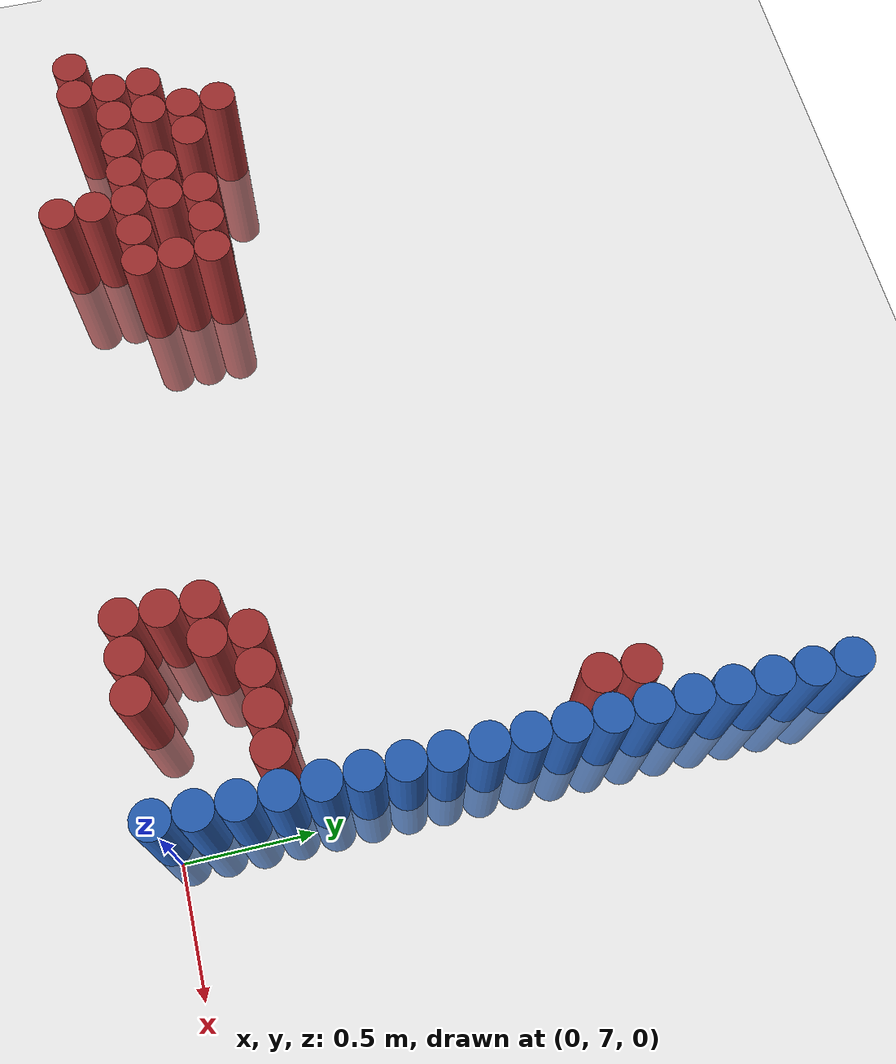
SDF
<sdf version="1.6">
 <world name="default">
  <model name="ground_plane">
   <static>1</static>
   <link name="link">
    <collision name="collision">
     <geometry><plane><normal>0 0 1</normal><size>100 100</size></plane></geometry>
     <surface><friction><ode><mu>100</mu><mu2>50</mu2></ode></friction></surface>
    </collision>
    <visual name="visual">
     <cast_shadows>0</cast_shadows>
     <geometry><plane><normal>0 0 1</normal><size>100 100</size></plane></geometry>
     <material>
      <script><uri>file://media/materials/scripts/gazebo.material</uri><name>Gazebo/Grey</name></script>
     </material>
    </visual>
   </link>
  </model>
  <model name="unit_cylinder_166">
   <static>1</static>
   <pose>-3.375000 7.125000 0.000000 0.000000 0.000000 0.000000</pose>
   <link name="link">
    <inertial>
     <mass>1</mass>
     <inertia><ixx>0.145833</ixx><ixy>0</ixy><ixz>0</ixz><iyy>0.145833</iyy><iyz>0</iyz><izz>0.125</izz></inertia>
    </inertial>
    <collision name="collision">
     <geometry><cylinder><radius>0.075000</radius><length>1</length></cylinder></geometry>
    </collision>
    <visual name="visual">
     <geometry><cylinder><radius>0.075000</radius><length>1</length></cylinder></geometry>
     <material>
      <ambient>0.648000 0.192000 0.192000 1</ambient>
      <diffuse>0.648000 0.192000 0.192000 1</diffuse>
     </material>
     <material>
      <script><name>Gazebo/Grey</name><uri>file://media/materials/scripts/gazebo.material</uri></script>
     </material>
    </visual>
   </link>
  </model>
  <model name="unit_cylinder_173">
   <static>1</static>
   <pose>-3.225000 7.125000 0.000000 0.000000 0.000000 0.000000</pose>
   <link name="link">
    <inertial>
     <mass>1</mass>
     <inertia><ixx>0.145833</ixx><ixy>0</ixy><ixz>0</ixz><iyy>0.145833</iyy><iyz>0</iyz><izz>0.125</izz></inertia>
    </inertial>
    <collision name="collision">
     <geometry><cylinder><radius>0.075000</radius><length>1</length></cylinder></geometry>
    </collision>
    <visual name="visual">
     <geometry><cylinder><radius>0.075000</radius><length>1</length></cylinder></geometry>
     <material>
      <ambient>0.648000 0.192000 0.192000 1</ambient>
      <diffuse>0.648000 0.192000 0.192000 1</diffuse>
     </material>
     <material>
      <script><name>Gazebo/Grey</name><uri>file://media/materials/scripts/gazebo.material</uri></script>
     </material>
    </visual>
   </link>
  </model>
  <model name="unit_cylinder_174">
   <static>1</static>
   <pose>-3.225000 7.275000 0.000000 0.000000 0.000000 0.000000</pose>
   <link name="link">
    <inertial>
     <mass>1</mass>
     <inertia><ixx>0.145833</ixx><ixy>0</ixy><ixz>0</ixz><iyy>0.145833</iyy><iyz>0</iyz><izz>0.125</izz></inertia>
    </inertial>
    <collision name="collision">
     <geometry><cylinder><radius>0.075000</radius><length>1</length></cylinder></geometry>
    </collision>
    <visual name="visual">
     <geometry><cylinder><radius>0.075000</radius><length>1</length></cylinder></geometry>
     <material>
      <ambient>0.648000 0.192000 0.192000 1</ambient>
      <diffuse>0.648000 0.192000 0.192000 1</diffuse>
     </material>
     <material>
      <script><name>Gazebo/Grey</name><uri>file://media/materials/scripts/gazebo.material</uri></script>
     </material>
    </visual>
   </link>
  </model>
  <model name="unit_cylinder_175">
   <static>1</static>
   <pose>-3.225000 7.425000 0.000000 0.000000 0.000000 0.000000</pose>
   <link name="link">
    <inertial>
     <mass>1</mass>
     <inertia><ixx>0.145833</ixx><ixy>0</ixy><ixz>0</ixz><iyy>0.145833</iyy><iyz>0</iyz><izz>0.125</izz></inertia>
    </inertial>
    <collision name="collision">
     <geometry><cylinder><radius>0.075000</radius><length>1</length></cylinder></geometry>
    </collision>
    <visual name="visual">
     <geometry><cylinder><radius>0.075000</radius><length>1</length></cylinder></geometry>
     <material>
      <ambient>0.648000 0.192000 0.192000 1</ambient>
      <diffuse>0.648000 0.192000 0.192000 1</diffuse>
     </material>
     <material>
      <script><name>Gazebo/Grey</name><uri>file://media/materials/scripts/gazebo.material</uri></script>
     </material>
    </visual>
   </link>
  </model>
  <model name="unit_cylinder_182">
   <static>1</static>
   <pose>-3.075000 7.275000 0.000000 0.000000 0.000000 0.000000</pose>
   <link name="link">
    <inertial>
     <mass>1</mass>
     <inertia><ixx>0.145833</ixx><ixy>0</ixy><ixz>0</ixz><iyy>0.145833</iyy><iyz>0</iyz><izz>0.125</izz></inertia>
    </inertial>
    <collision name="collision">
     <geometry><cylinder><radius>0.075000</radius><length>1</length></cylinder></geometry>
    </collision>
    <visual name="visual">
     <geometry><cylinder><radius>0.075000</radius><length>1</length></cylinder></geometry>
     <material>
      <ambient>0.648000 0.192000 0.192000 1</ambient>
      <diffuse>0.648000 0.192000 0.192000 1</diffuse>
     </material>
     <material>
      <script><name>Gazebo/Grey</name><uri>file://media/materials/scripts/gazebo.material</uri></script>
     </material>
    </visual>
   </link>
  </model>
  <model name="unit_cylinder_183">
   <static>1</static>
   <pose>-3.075000 7.425000 0.000000 0.000000 0.000000 0.000000</pose>
   <link name="link">
    <inertial>
     <mass>1</mass>
     <inertia><ixx>0.145833</ixx><ixy>0</ixy><ixz>0</ixz><iyy>0.145833</iyy><iyz>0</iyz><izz>0.125</izz></inertia>
    </inertial>
    <collision name="collision">
     <geometry><cylinder><radius>0.075000</radius><length>1</length></cylinder></geometry>
    </collision>
    <visual name="visual">
     <geometry><cylinder><radius>0.075000</radius><length>1</length></cylinder></geometry>
     <material>
      <ambient>0.648000 0.192000 0.192000 1</ambient>
      <diffuse>0.648000 0.192000 0.192000 1</diffuse>
     </material>
     <material>
      <script><name>Gazebo/Grey</name><uri>file://media/materials/scripts/gazebo.material</uri></script>
     </material>
    </visual>
   </link>
  </model>
  <model name="unit_cylinder_184">
   <static>1</static>
   <pose>-3.075000 7.575000 0.000000 0.000000 0.000000 0.000000</pose>
   <link name="link">
    <inertial>
     <mass>1</mass>
     <inertia><ixx>0.145833</ixx><ixy>0</ixy><ixz>0</ixz><iyy>0.145833</iyy><iyz>0</iyz><izz>0.125</izz></inertia>
    </inertial>
    <collision name="collision">
     <geometry><cylinder><radius>0.075000</radius><length>1</length></cylinder></geometry>
    </collision>
    <visual name="visual">
     <geometry><cylinder><radius>0.075000</radius><length>1</length></cylinder></geometry>
     <material>
      <ambient>0.648000 0.192000 0.192000 1</ambient>
      <diffuse>0.648000 0.192000 0.192000 1</diffuse>
     </material>
     <material>
      <script><name>Gazebo/Grey</name><uri>file://media/materials/scripts/gazebo.material</uri></script>
     </material>
    </visual>
   </link>
  </model>
  <model name="unit_cylinder_185">
   <static>1</static>
   <pose>-3.075000 7.725000 0.000000 0.000000 0.000000 0.000000</pose>
   <link name="link">
    <inertial>
     <mass>1</mass>
     <inertia><ixx>0.145833</ixx><ixy>0</ixy><ixz>0</ixz><iyy>0.145833</iyy><iyz>0</iyz><izz>0.125</izz></inertia>
    </inertial>
    <collision name="collision">
     <geometry><cylinder><radius>0.075000</radius><length>1</length></cylinder></geometry>
    </collision>
    <visual name="visual">
     <geometry><cylinder><radius>0.075000</radius><length>1</length></cylinder></geometry>
     <material>
      <ambient>0.648000 0.192000 0.192000 1</ambient>
      <diffuse>0.648000 0.192000 0.192000 1</diffuse>
     </material>
     <material>
      <script><name>Gazebo/Grey</name><uri>file://media/materials/scripts/gazebo.material</uri></script>
     </material>
    </visual>
   </link>
  </model>
  <model name="unit_cylinder_195">
   <static>1</static>
   <pose>-2.925000 7.275000 0.000000 0.000000 0.000000 0.000000</pose>
   <link name="link">
    <inertial>
     <mass>1</mass>
     <inertia><ixx>0.145833</ixx><ixy>0</ixy><ixz>0</ixz><iyy>0.145833</iyy><iyz>0</iyz><izz>0.125</izz></inertia>
    </inertial>
    <collision name="collision">
     <geometry><cylinder><radius>0.075000</radius><length>1</length></cylinder></geometry>
    </collision>
    <visual name="visual">
     <geometry><cylinder><radius>0.075000</radius><length>1</length></cylinder></geometry>
     <material>
      <ambient>0.648000 0.192000 0.192000 1</ambient>
      <diffuse>0.648000 0.192000 0.192000 1</diffuse>
     </material>
     <material>
      <script><name>Gazebo/Grey</name><uri>file://media/materials/scripts/gazebo.material</uri></script>
     </material>
    </visual>
   </link>
  </model>
  <model name="unit_cylinder_196">
   <static>1</static>
   <pose>-2.925000 7.575000 0.000000 0.000000 0.000000 0.000000</pose>
   <link name="link">
    <inertial>
     <mass>1</mass>
     <inertia><ixx>0.145833</ixx><ixy>0</ixy><ixz>0</ixz><iyy>0.145833</iyy><iyz>0</iyz><izz>0.125</izz></inertia>
    </inertial>
    <collision name="collision">
     <geometry><cylinder><radius>0.075000</radius><length>1</length></cylinder></geometry>
    </collision>
    <visual name="visual">
     <geometry><cylinder><radius>0.075000</radius><length>1</length></cylinder></geometry>
     <material>
      <ambient>0.648000 0.192000 0.192000 1</ambient>
      <diffuse>0.648000 0.192000 0.192000 1</diffuse>
     </material>
     <material>
      <script><name>Gazebo/Grey</name><uri>file://media/materials/scripts/gazebo.material</uri></script>
     </material>
    </visual>
   </link>
  </model>
  <model name="unit_cylinder_203">
   <static>1</static>
   <pose>-2.775000 7.275000 0.000000 0.000000 0.000000 0.000000</pose>
   <link name="link">
    <inertial>
     <mass>1</mass>
     <inertia><ixx>0.145833</ixx><ixy>0</ixy><ixz>0</ixz><iyy>0.145833</iyy><iyz>0</iyz><izz>0.125</izz></inertia>
    </inertial>
    <collision name="collision">
     <geometry><cylinder><radius>0.075000</radius><length>1</length></cylinder></geometry>
    </collision>
    <visual name="visual">
     <geometry><cylinder><radius>0.075000</radius><length>1</length></cylinder></geometry>
     <material>
      <ambient>0.648000 0.192000 0.192000 1</ambient>
      <diffuse>0.648000 0.192000 0.192000 1</diffuse>
     </material>
     <material>
      <script><name>Gazebo/Grey</name><uri>file://media/materials/scripts/gazebo.material</uri></script>
     </material>
    </visual>
   </link>
  </model>
  <model name="unit_cylinder_204">
   <static>1</static>
   <pose>-2.775000 7.425000 0.000000 0.000000 0.000000 0.000000</pose>
   <link name="link">
    <inertial>
     <mass>1</mass>
     <inertia><ixx>0.145833</ixx><ixy>0</ixy><ixz>0</ixz><iyy>0.145833</iyy><iyz>0</iyz><izz>0.125</izz></inertia>
    </inertial>
    <collision name="collision">
     <geometry><cylinder><radius>0.075000</radius><length>1</length></cylinder></geometry>
    </collision>
    <visual name="visual">
     <geometry><cylinder><radius>0.075000</radius><length>1</length></cylinder></geometry>
     <material>
      <ambient>0.648000 0.192000 0.192000 1</ambient>
      <diffuse>0.648000 0.192000 0.192000 1</diffuse>
     </material>
     <material>
      <script><name>Gazebo/Grey</name><uri>file://media/materials/scripts/gazebo.material</uri></script>
     </material>
    </visual>
   </link>
  </model>
  <model name="unit_cylinder_208">
   <static>1</static>
   <pose>-2.625000 6.975000 0.000000 0.000000 0.000000 0.000000</pose>
   <link name="link">
    <inertial>
     <mass>1</mass>
     <inertia><ixx>0.145833</ixx><ixy>0</ixy><ixz>0</ixz><iyy>0.145833</iyy><iyz>0</iyz><izz>0.125</izz></inertia>
    </inertial>
    <collision name="collision">
     <geometry><cylinder><radius>0.075000</radius><length>1</length></cylinder></geometry>
    </collision>
    <visual name="visual">
     <geometry><cylinder><radius>0.075000</radius><length>1</length></cylinder></geometry>
     <material>
      <ambient>0.648000 0.192000 0.192000 1</ambient>
      <diffuse>0.648000 0.192000 0.192000 1</diffuse>
     </material>
     <material>
      <script><name>Gazebo/Grey</name><uri>file://media/materials/scripts/gazebo.material</uri></script>
     </material>
    </visual>
   </link>
  </model>
  <model name="unit_cylinder_209">
   <static>1</static>
   <pose>-2.625000 7.125000 0.000000 0.000000 0.000000 0.000000</pose>
   <link name="link">
    <inertial>
     <mass>1</mass>
     <inertia><ixx>0.145833</ixx><ixy>0</ixy><ixz>0</ixz><iyy>0.145833</iyy><iyz>0</iyz><izz>0.125</izz></inertia>
    </inertial>
    <collision name="collision">
     <geometry><cylinder><radius>0.075000</radius><length>1</length></cylinder></geometry>
    </collision>
    <visual name="visual">
     <geometry><cylinder><radius>0.075000</radius><length>1</length></cylinder></geometry>
     <material>
      <ambient>0.648000 0.192000 0.192000 1</ambient>
      <diffuse>0.648000 0.192000 0.192000 1</diffuse>
     </material>
     <material>
      <script><name>Gazebo/Grey</name><uri>file://media/materials/scripts/gazebo.material</uri></script>
     </material>
    </visual>
   </link>
  </model>
  <model name="unit_cylinder_210">
   <static>1</static>
   <pose>-2.625000 7.275000 0.000000 0.000000 0.000000 0.000000</pose>
   <link name="link">
    <inertial>
     <mass>1</mass>
     <inertia><ixx>0.145833</ixx><ixy>0</ixy><ixz>0</ixz><iyy>0.145833</iyy><iyz>0</iyz><izz>0.125</izz></inertia>
    </inertial>
    <collision name="collision">
     <geometry><cylinder><radius>0.075000</radius><length>1</length></cylinder></geometry>
    </collision>
    <visual name="visual">
     <geometry><cylinder><radius>0.075000</radius><length>1</length></cylinder></geometry>
     <material>
      <ambient>0.648000 0.192000 0.192000 1</ambient>
      <diffuse>0.648000 0.192000 0.192000 1</diffuse>
     </material>
     <material>
      <script><name>Gazebo/Grey</name><uri>file://media/materials/scripts/gazebo.material</uri></script>
     </material>
    </visual>
   </link>
  </model>
  <model name="unit_cylinder_211">
   <static>1</static>
   <pose>-2.625000 7.425000 0.000000 0.000000 0.000000 0.000000</pose>
   <link name="link">
    <inertial>
     <mass>1</mass>
     <inertia><ixx>0.145833</ixx><ixy>0</ixy><ixz>0</ixz><iyy>0.145833</iyy><iyz>0</iyz><izz>0.125</izz></inertia>
    </inertial>
    <collision name="collision">
     <geometry><cylinder><radius>0.075000</radius><length>1</length></cylinder></geometry>
    </collision>
    <visual name="visual">
     <geometry><cylinder><radius>0.075000</radius><length>1</length></cylinder></geometry>
     <material>
      <ambient>0.648000 0.192000 0.192000 1</ambient>
      <diffuse>0.648000 0.192000 0.192000 1</diffuse>
     </material>
     <material>
      <script><name>Gazebo/Grey</name><uri>file://media/materials/scripts/gazebo.material</uri></script>
     </material>
    </visual>
   </link>
  </model>
  <model name="unit_cylinder_212">
   <static>1</static>
   <pose>-2.625000 7.575000 0.000000 0.000000 0.000000 0.000000</pose>
   <link name="link">
    <inertial>
     <mass>1</mass>
     <inertia><ixx>0.145833</ixx><ixy>0</ixy><ixz>0</ixz><iyy>0.145833</iyy><iyz>0</iyz><izz>0.125</izz></inertia>
    </inertial>
    <collision name="collision">
     <geometry><cylinder><radius>0.075000</radius><length>1</length></cylinder></geometry>
    </collision>
    <visual name="visual">
     <geometry><cylinder><radius>0.075000</radius><length>1</length></cylinder></geometry>
     <material>
      <ambient>0.648000 0.192000 0.192000 1</ambient>
      <diffuse>0.648000 0.192000 0.192000 1</diffuse>
     </material>
     <material>
      <script><name>Gazebo/Grey</name><uri>file://media/materials/scripts/gazebo.material</uri></script>
     </material>
    </visual>
   </link>
  </model>
  <model name="unit_cylinder_216">
   <static>1</static>
   <pose>-2.475000 7.275000 0.000000 0.000000 0.000000 0.000000</pose>
   <link name="link">
    <inertial>
     <mass>1</mass>
     <inertia><ixx>0.145833</ixx><ixy>0</ixy><ixz>0</ixz><iyy>0.145833</iyy><iyz>0</iyz><izz>0.125</izz></inertia>
    </inertial>
    <collision name="collision">
     <geometry><cylinder><radius>0.075000</radius><length>1</length></cylinder></geometry>
    </collision>
    <visual name="visual">
     <geometry><cylinder><radius>0.075000</radius><length>1</length></cylinder></geometry>
     <material>
      <ambient>0.648000 0.192000 0.192000 1</ambient>
      <diffuse>0.648000 0.192000 0.192000 1</diffuse>
     </material>
     <material>
      <script><name>Gazebo/Grey</name><uri>file://media/materials/scripts/gazebo.material</uri></script>
     </material>
    </visual>
   </link>
  </model>
  <model name="unit_cylinder_217">
   <static>1</static>
   <pose>-2.475000 7.575000 0.000000 0.000000 0.000000 0.000000</pose>
   <link name="link">
    <inertial>
     <mass>1</mass>
     <inertia><ixx>0.145833</ixx><ixy>0</ixy><ixz>0</ixz><iyy>0.145833</iyy><iyz>0</iyz><izz>0.125</izz></inertia>
    </inertial>
    <collision name="collision">
     <geometry><cylinder><radius>0.075000</radius><length>1</length></cylinder></geometry>
    </collision>
    <visual name="visual">
     <geometry><cylinder><radius>0.075000</radius><length>1</length></cylinder></geometry>
     <material>
      <ambient>0.648000 0.192000 0.192000 1</ambient>
      <diffuse>0.648000 0.192000 0.192000 1</diffuse>
     </material>
     <material>
      <script><name>Gazebo/Grey</name><uri>file://media/materials/scripts/gazebo.material</uri></script>
     </material>
    </visual>
   </link>
  </model>
  <model name="unit_cylinder_225">
   <static>1</static>
   <pose>-2.325000 7.275000 0.000000 0.000000 0.000000 0.000000</pose>
   <link name="link">
    <inertial>
     <mass>1</mass>
     <inertia><ixx>0.145833</ixx><ixy>0</ixy><ixz>0</ixz><iyy>0.145833</iyy><iyz>0</iyz><izz>0.125</izz></inertia>
    </inertial>
    <collision name="collision">
     <geometry><cylinder><radius>0.075000</radius><length>1</length></cylinder></geometry>
    </collision>
    <visual name="visual">
     <geometry><cylinder><radius>0.075000</radius><length>1</length></cylinder></geometry>
     <material>
      <ambient>0.648000 0.192000 0.192000 1</ambient>
      <diffuse>0.648000 0.192000 0.192000 1</diffuse>
     </material>
     <material>
      <script><name>Gazebo/Grey</name><uri>file://media/materials/scripts/gazebo.material</uri></script>
     </material>
    </visual>
   </link>
  </model>
  <model name="unit_cylinder_226">
   <static>1</static>
   <pose>-2.325000 7.425000 0.000000 0.000000 0.000000 0.000000</pose>
   <link name="link">
    <inertial>
     <mass>1</mass>
     <inertia><ixx>0.145833</ixx><ixy>0</ixy><ixz>0</ixz><iyy>0.145833</iyy><iyz>0</iyz><izz>0.125</izz></inertia>
    </inertial>
    <collision name="collision">
     <geometry><cylinder><radius>0.075000</radius><length>1</length></cylinder></geometry>
    </collision>
    <visual name="visual">
     <geometry><cylinder><radius>0.075000</radius><length>1</length></cylinder></geometry>
     <material>
      <ambient>0.648000 0.192000 0.192000 1</ambient>
      <diffuse>0.648000 0.192000 0.192000 1</diffuse>
     </material>
     <material>
      <script><name>Gazebo/Grey</name><uri>file://media/materials/scripts/gazebo.material</uri></script>
     </material>
    </visual>
   </link>
  </model>
  <model name="unit_cylinder_227">
   <static>1</static>
   <pose>-2.325000 7.575000 0.000000 0.000000 0.000000 0.000000</pose>
   <link name="link">
    <inertial>
     <mass>1</mass>
     <inertia><ixx>0.145833</ixx><ixy>0</ixy><ixz>0</ixz><iyy>0.145833</iyy><iyz>0</iyz><izz>0.125</izz></inertia>
    </inertial>
    <collision name="collision">
     <geometry><cylinder><radius>0.075000</radius><length>1</length></cylinder></geometry>
    </collision>
    <visual name="visual">
     <geometry><cylinder><radius>0.075000</radius><length>1</length></cylinder></geometry>
     <material>
      <ambient>0.648000 0.192000 0.192000 1</ambient>
      <diffuse>0.648000 0.192000 0.192000 1</diffuse>
     </material>
     <material>
      <script><name>Gazebo/Grey</name><uri>file://media/materials/scripts/gazebo.material</uri></script>
     </material>
    </visual>
   </link>
  </model>
  <model name="unit_cylinder_258">
   <static>1</static>
   <pose>-0.825000 6.975000 0.000000 0.000000 0.000000 0.000000</pose>
   <link name="link">
    <inertial>
     <mass>1</mass>
     <inertia><ixx>0.145833</ixx><ixy>0</ixy><ixz>0</ixz><iyy>0.145833</iyy><iyz>0</iyz><izz>0.125</izz></inertia>
    </inertial>
    <collision name="collision">
     <geometry><cylinder><radius>0.075000</radius><length>1</length></cylinder></geometry>
    </collision>
    <visual name="visual">
     <geometry><cylinder><radius>0.075000</radius><length>1</length></cylinder></geometry>
     <material>
      <ambient>0.648000 0.192000 0.192000 1</ambient>
      <diffuse>0.648000 0.192000 0.192000 1</diffuse>
     </material>
     <material>
      <script><name>Gazebo/Grey</name><uri>file://media/materials/scripts/gazebo.material</uri></script>
     </material>
    </visual>
   </link>
  </model>
  <model name="unit_cylinder_259">
   <static>1</static>
   <pose>-0.825000 7.125000 0.000000 0.000000 0.000000 0.000000</pose>
   <link name="link">
    <inertial>
     <mass>1</mass>
     <inertia><ixx>0.145833</ixx><ixy>0</ixy><ixz>0</ixz><iyy>0.145833</iyy><iyz>0</iyz><izz>0.125</izz></inertia>
    </inertial>
    <collision name="collision">
     <geometry><cylinder><radius>0.075000</radius><length>1</length></cylinder></geometry>
    </collision>
    <visual name="visual">
     <geometry><cylinder><radius>0.075000</radius><length>1</length></cylinder></geometry>
     <material>
      <ambient>0.648000 0.192000 0.192000 1</ambient>
      <diffuse>0.648000 0.192000 0.192000 1</diffuse>
     </material>
     <material>
      <script><name>Gazebo/Grey</name><uri>file://media/materials/scripts/gazebo.material</uri></script>
     </material>
    </visual>
   </link>
  </model>
  <model name="unit_cylinder_260">
   <static>1</static>
   <pose>-0.825000 7.275000 0.000000 0.000000 0.000000 0.000000</pose>
   <link name="link">
    <inertial>
     <mass>1</mass>
     <inertia><ixx>0.145833</ixx><ixy>0</ixy><ixz>0</ixz><iyy>0.145833</iyy><iyz>0</iyz><izz>0.125</izz></inertia>
    </inertial>
    <collision name="collision">
     <geometry><cylinder><radius>0.075000</radius><length>1</length></cylinder></geometry>
    </collision>
    <visual name="visual">
     <geometry><cylinder><radius>0.075000</radius><length>1</length></cylinder></geometry>
     <material>
      <ambient>0.648000 0.192000 0.192000 1</ambient>
      <diffuse>0.648000 0.192000 0.192000 1</diffuse>
     </material>
     <material>
      <script><name>Gazebo/Grey</name><uri>file://media/materials/scripts/gazebo.material</uri></script>
     </material>
    </visual>
   </link>
  </model>
  <model name="unit_cylinder_263">
   <static>1</static>
   <pose>-0.675000 6.975000 0.000000 0.000000 0.000000 0.000000</pose>
   <link name="link">
    <inertial>
     <mass>1</mass>
     <inertia><ixx>0.145833</ixx><ixy>0</ixy><ixz>0</ixz><iyy>0.145833</iyy><iyz>0</iyz><izz>0.125</izz></inertia>
    </inertial>
    <collision name="collision">
     <geometry><cylinder><radius>0.075000</radius><length>1</length></cylinder></geometry>
    </collision>
    <visual name="visual">
     <geometry><cylinder><radius>0.075000</radius><length>1</length></cylinder></geometry>
     <material>
      <ambient>0.648000 0.192000 0.192000 1</ambient>
      <diffuse>0.648000 0.192000 0.192000 1</diffuse>
     </material>
     <material>
      <script><name>Gazebo/Grey</name><uri>file://media/materials/scripts/gazebo.material</uri></script>
     </material>
    </visual>
   </link>
  </model>
  <model name="unit_cylinder_264">
   <static>1</static>
   <pose>-0.675000 7.275000 0.000000 0.000000 0.000000 0.000000</pose>
   <link name="link">
    <inertial>
     <mass>1</mass>
     <inertia><ixx>0.145833</ixx><ixy>0</ixy><ixz>0</ixz><iyy>0.145833</iyy><iyz>0</iyz><izz>0.125</izz></inertia>
    </inertial>
    <collision name="collision">
     <geometry><cylinder><radius>0.075000</radius><length>1</length></cylinder></geometry>
    </collision>
    <visual name="visual">
     <geometry><cylinder><radius>0.075000</radius><length>1</length></cylinder></geometry>
     <material>
      <ambient>0.648000 0.192000 0.192000 1</ambient>
      <diffuse>0.648000 0.192000 0.192000 1</diffuse>
     </material>
     <material>
      <script><name>Gazebo/Grey</name><uri>file://media/materials/scripts/gazebo.material</uri></script>
     </material>
    </visual>
   </link>
  </model>
  <model name="unit_cylinder_265">
   <static>1</static>
   <pose>-0.675000 7.425000 0.000000 0.000000 0.000000 0.000000</pose>
   <link name="link">
    <inertial>
     <mass>1</mass>
     <inertia><ixx>0.145833</ixx><ixy>0</ixy><ixz>0</ixz><iyy>0.145833</iyy><iyz>0</iyz><izz>0.125</izz></inertia>
    </inertial>
    <collision name="collision">
     <geometry><cylinder><radius>0.075000</radius><length>1</length></cylinder></geometry>
    </collision>
    <visual name="visual">
     <geometry><cylinder><radius>0.075000</radius><length>1</length></cylinder></geometry>
     <material>
      <ambient>0.648000 0.192000 0.192000 1</ambient>
      <diffuse>0.648000 0.192000 0.192000 1</diffuse>
     </material>
     <material>
      <script><name>Gazebo/Grey</name><uri>file://media/materials/scripts/gazebo.material</uri></script>
     </material>
    </visual>
   </link>
  </model>
  <model name="unit_cylinder_270">
   <static>1</static>
   <pose>-0.525000 6.975000 0.000000 0.000000 0.000000 0.000000</pose>
   <link name="link">
    <inertial>
     <mass>1</mass>
     <inertia><ixx>0.145833</ixx><ixy>0</ixy><ixz>0</ixz><iyy>0.145833</iyy><iyz>0</iyz><izz>0.125</izz></inertia>
    </inertial>
    <collision name="collision">
     <geometry><cylinder><radius>0.075000</radius><length>1</length></cylinder></geometry>
    </collision>
    <visual name="visual">
     <geometry><cylinder><radius>0.075000</radius><length>1</length></cylinder></geometry>
     <material>
      <ambient>0.648000 0.192000 0.192000 1</ambient>
      <diffuse>0.648000 0.192000 0.192000 1</diffuse>
     </material>
     <material>
      <script><name>Gazebo/Grey</name><uri>file://media/materials/scripts/gazebo.material</uri></script>
     </material>
    </visual>
   </link>
  </model>
  <model name="unit_cylinder_271">
   <static>1</static>
   <pose>-0.525000 7.425000 0.000000 0.000000 0.000000 0.000000</pose>
   <link name="link">
    <inertial>
     <mass>1</mass>
     <inertia><ixx>0.145833</ixx><ixy>0</ixy><ixz>0</ixz><iyy>0.145833</iyy><iyz>0</iyz><izz>0.125</izz></inertia>
    </inertial>
    <collision name="collision">
     <geometry><cylinder><radius>0.075000</radius><length>1</length></cylinder></geometry>
    </collision>
    <visual name="visual">
     <geometry><cylinder><radius>0.075000</radius><length>1</length></cylinder></geometry>
     <material>
      <ambient>0.648000 0.192000 0.192000 1</ambient>
      <diffuse>0.648000 0.192000 0.192000 1</diffuse>
     </material>
     <material>
      <script><name>Gazebo/Grey</name><uri>file://media/materials/scripts/gazebo.material</uri></script>
     </material>
    </visual>
   </link>
  </model>
  <model name="unit_cylinder_273">
   <static>1</static>
   <pose>-0.375000 7.425000 0.000000 0.000000 0.000000 0.000000</pose>
   <link name="link">
    <inertial>
     <mass>1</mass>
     <inertia><ixx>0.145833</ixx><ixy>0</ixy><ixz>0</ixz><iyy>0.145833</iyy><iyz>0</iyz><izz>0.125</izz></inertia>
    </inertial>
    <collision name="collision">
     <geometry><cylinder><radius>0.075000</radius><length>1</length></cylinder></geometry>
    </collision>
    <visual name="visual">
     <geometry><cylinder><radius>0.075000</radius><length>1</length></cylinder></geometry>
     <material>
      <ambient>0.648000 0.192000 0.192000 1</ambient>
      <diffuse>0.648000 0.192000 0.192000 1</diffuse>
     </material>
     <material>
      <script><name>Gazebo/Grey</name><uri>file://media/materials/scripts/gazebo.material</uri></script>
     </material>
    </visual>
   </link>
  </model>
  <model name="unit_cylinder_275">
   <static>1</static>
   <pose>-0.225000 7.425000 0.000000 0.000000 0.000000 0.000000</pose>
   <link name="link">
    <inertial>
     <mass>1</mass>
     <inertia><ixx>0.145833</ixx><ixy>0</ixy><ixz>0</ixz><iyy>0.145833</iyy><iyz>0</iyz><izz>0.125</izz></inertia>
    </inertial>
    <collision name="collision">
     <geometry><cylinder><radius>0.075000</radius><length>1</length></cylinder></geometry>
    </collision>
    <visual name="visual">
     <geometry><cylinder><radius>0.075000</radius><length>1</length></cylinder></geometry>
     <material>
      <ambient>0.648000 0.192000 0.192000 1</ambient>
      <diffuse>0.648000 0.192000 0.192000 1</diffuse>
     </material>
     <material>
      <script><name>Gazebo/Grey</name><uri>file://media/materials/scripts/gazebo.material</uri></script>
     </material>
    </visual>
   </link>
  </model>
  <model name="unit_cylinder_276">
   <static>1</static>
   <pose>-0.225000 8.625000 0.000000 0.000000 0.000000 0.000000</pose>
   <link name="link">
    <inertial>
     <mass>1</mass>
     <inertia><ixx>0.145833</ixx><ixy>0</ixy><ixz>0</ixz><iyy>0.145833</iyy><iyz>0</iyz><izz>0.125</izz></inertia>
    </inertial>
    <collision name="collision">
     <geometry><cylinder><radius>0.075000</radius><length>1</length></cylinder></geometry>
    </collision>
    <visual name="visual">
     <geometry><cylinder><radius>0.075000</radius><length>1</length></cylinder></geometry>
     <material>
      <ambient>0.648000 0.192000 0.192000 1</ambient>
      <diffuse>0.648000 0.192000 0.192000 1</diffuse>
     </material>
     <material>
      <script><name>Gazebo/Grey</name><uri>file://media/materials/scripts/gazebo.material</uri></script>
     </material>
    </visual>
   </link>
  </model>
  <model name="unit_cylinder_277">
   <static>1</static>
   <pose>-0.225000 8.775000 0.000000 0.000000 0.000000 0.000000</pose>
   <link name="link">
    <inertial>
     <mass>1</mass>
     <inertia><ixx>0.145833</ixx><ixy>0</ixy><ixz>0</ixz><iyy>0.145833</iyy><iyz>0</iyz><izz>0.125</izz></inertia>
    </inertial>
    <collision name="collision">
     <geometry><cylinder><radius>0.075000</radius><length>1</length></cylinder></geometry>
    </collision>
    <visual name="visual">
     <geometry><cylinder><radius>0.075000</radius><length>1</length></cylinder></geometry>
     <material>
      <ambient>0.648000 0.192000 0.192000 1</ambient>
      <diffuse>0.648000 0.192000 0.192000 1</diffuse>
     </material>
     <material>
      <script><name>Gazebo/Grey</name><uri>file://media/materials/scripts/gazebo.material</uri></script>
     </material>
    </visual>
   </link>
  </model>
  <model name="unit_cylinder_290">
   <static>1</static>
   <pose>-0.075000 6.975000 0.000000 0.000000 0.000000 0.000000</pose>
   <link name="link">
    <inertial>
     <mass>1</mass>
     <inertia><ixx>0.145833</ixx><ixy>0</ixy><ixz>0</ixz><iyy>0.145833</iyy><iyz>0</iyz><izz>0.125</izz></inertia>
    </inertial>
    <collision name="collision">
     <geometry><cylinder><radius>0.075000</radius><length>1</length></cylinder></geometry>
    </collision>
    <visual name="visual">
     <geometry><cylinder><radius>0.075000</radius><length>1</length></cylinder></geometry>
     <material>
      <ambient>0.152000 0.379000 0.720000 1</ambient>
      <diffuse>0.152000 0.379000 0.720000 1</diffuse>
     </material>
     <material>
      <script><name>Gazebo/Grey</name><uri>file://media/materials/scripts/gazebo.material</uri></script>
     </material>
    </visual>
   </link>
  </model>
  <model name="unit_cylinder_291">
   <static>1</static>
   <pose>-0.075000 7.125000 0.000000 0.000000 0.000000 0.000000</pose>
   <link name="link">
    <inertial>
     <mass>1</mass>
     <inertia><ixx>0.145833</ixx><ixy>0</ixy><ixz>0</ixz><iyy>0.145833</iyy><iyz>0</iyz><izz>0.125</izz></inertia>
    </inertial>
    <collision name="collision">
     <geometry><cylinder><radius>0.075000</radius><length>1</length></cylinder></geometry>
    </collision>
    <visual name="visual">
     <geometry><cylinder><radius>0.075000</radius><length>1</length></cylinder></geometry>
     <material>
      <ambient>0.152000 0.379000 0.720000 1</ambient>
      <diffuse>0.152000 0.379000 0.720000 1</diffuse>
     </material>
     <material>
      <script><name>Gazebo/Grey</name><uri>file://media/materials/scripts/gazebo.material</uri></script>
     </material>
    </visual>
   </link>
  </model>
  <model name="unit_cylinder_292">
   <static>1</static>
   <pose>-0.075000 7.275000 0.000000 0.000000 0.000000 0.000000</pose>
   <link name="link">
    <inertial>
     <mass>1</mass>
     <inertia><ixx>0.145833</ixx><ixy>0</ixy><ixz>0</ixz><iyy>0.145833</iyy><iyz>0</iyz><izz>0.125</izz></inertia>
    </inertial>
    <collision name="collision">
     <geometry><cylinder><radius>0.075000</radius><length>1</length></cylinder></geometry>
    </collision>
    <visual name="visual">
     <geometry><cylinder><radius>0.075000</radius><length>1</length></cylinder></geometry>
     <material>
      <ambient>0.152000 0.379000 0.720000 1</ambient>
      <diffuse>0.152000 0.379000 0.720000 1</diffuse>
     </material>
     <material>
      <script><name>Gazebo/Grey</name><uri>file://media/materials/scripts/gazebo.material</uri></script>
     </material>
    </visual>
   </link>
  </model>
  <model name="unit_cylinder_293">
   <static>1</static>
   <pose>-0.075000 7.425000 0.000000 0.000000 0.000000 0.000000</pose>
   <link name="link">
    <inertial>
     <mass>1</mass>
     <inertia><ixx>0.145833</ixx><ixy>0</ixy><ixz>0</ixz><iyy>0.145833</iyy><iyz>0</iyz><izz>0.125</izz></inertia>
    </inertial>
    <collision name="collision">
     <geometry><cylinder><radius>0.075000</radius><length>1</length></cylinder></geometry>
    </collision>
    <visual name="visual">
     <geometry><cylinder><radius>0.075000</radius><length>1</length></cylinder></geometry>
     <material>
      <ambient>0.152000 0.379000 0.720000 1</ambient>
      <diffuse>0.152000 0.379000 0.720000 1</diffuse>
     </material>
     <material>
      <script><name>Gazebo/Grey</name><uri>file://media/materials/scripts/gazebo.material</uri></script>
     </material>
    </visual>
   </link>
  </model>
  <model name="unit_cylinder_294">
   <static>1</static>
   <pose>-0.075000 7.575000 0.000000 0.000000 0.000000 0.000000</pose>
   <link name="link">
    <inertial>
     <mass>1</mass>
     <inertia><ixx>0.145833</ixx><ixy>0</ixy><ixz>0</ixz><iyy>0.145833</iyy><iyz>0</iyz><izz>0.125</izz></inertia>
    </inertial>
    <collision name="collision">
     <geometry><cylinder><radius>0.075000</radius><length>1</length></cylinder></geometry>
    </collision>
    <visual name="visual">
     <geometry><cylinder><radius>0.075000</radius><length>1</length></cylinder></geometry>
     <material>
      <ambient>0.152000 0.379000 0.720000 1</ambient>
      <diffuse>0.152000 0.379000 0.720000 1</diffuse>
     </material>
     <material>
      <script><name>Gazebo/Grey</name><uri>file://media/materials/scripts/gazebo.material</uri></script>
     </material>
    </visual>
   </link>
  </model>
  <model name="unit_cylinder_295">
   <static>1</static>
   <pose>-0.075000 7.725000 0.000000 0.000000 0.000000 0.000000</pose>
   <link name="link">
    <inertial>
     <mass>1</mass>
     <inertia><ixx>0.145833</ixx><ixy>0</ixy><ixz>0</ixz><iyy>0.145833</iyy><iyz>0</iyz><izz>0.125</izz></inertia>
    </inertial>
    <collision name="collision">
     <geometry><cylinder><radius>0.075000</radius><length>1</length></cylinder></geometry>
    </collision>
    <visual name="visual">
     <geometry><cylinder><radius>0.075000</radius><length>1</length></cylinder></geometry>
     <material>
      <ambient>0.152000 0.379000 0.720000 1</ambient>
      <diffuse>0.152000 0.379000 0.720000 1</diffuse>
     </material>
     <material>
      <script><name>Gazebo/Grey</name><uri>file://media/materials/scripts/gazebo.material</uri></script>
     </material>
    </visual>
   </link>
  </model>
  <model name="unit_cylinder_296">
   <static>1</static>
   <pose>-0.075000 7.875000 0.000000 0.000000 0.000000 0.000000</pose>
   <link name="link">
    <inertial>
     <mass>1</mass>
     <inertia><ixx>0.145833</ixx><ixy>0</ixy><ixz>0</ixz><iyy>0.145833</iyy><iyz>0</iyz><izz>0.125</izz></inertia>
    </inertial>
    <collision name="collision">
     <geometry><cylinder><radius>0.075000</radius><length>1</length></cylinder></geometry>
    </collision>
    <visual name="visual">
     <geometry><cylinder><radius>0.075000</radius><length>1</length></cylinder></geometry>
     <material>
      <ambient>0.152000 0.379000 0.720000 1</ambient>
      <diffuse>0.152000 0.379000 0.720000 1</diffuse>
     </material>
     <material>
      <script><name>Gazebo/Grey</name><uri>file://media/materials/scripts/gazebo.material</uri></script>
     </material>
    </visual>
   </link>
  </model>
  <model name="unit_cylinder_297">
   <static>1</static>
   <pose>-0.075000 8.025000 0.000000 0.000000 0.000000 0.000000</pose>
   <link name="link">
    <inertial>
     <mass>1</mass>
     <inertia><ixx>0.145833</ixx><ixy>0</ixy><ixz>0</ixz><iyy>0.145833</iyy><iyz>0</iyz><izz>0.125</izz></inertia>
    </inertial>
    <collision name="collision">
     <geometry><cylinder><radius>0.075000</radius><length>1</length></cylinder></geometry>
    </collision>
    <visual name="visual">
     <geometry><cylinder><radius>0.075000</radius><length>1</length></cylinder></geometry>
     <material>
      <ambient>0.152000 0.379000 0.720000 1</ambient>
      <diffuse>0.152000 0.379000 0.720000 1</diffuse>
     </material>
     <material>
      <script><name>Gazebo/Grey</name><uri>file://media/materials/scripts/gazebo.material</uri></script>
     </material>
    </visual>
   </link>
  </model>
  <model name="unit_cylinder_298">
   <static>1</static>
   <pose>-0.075000 8.175000 0.000000 0.000000 0.000000 0.000000</pose>
   <link name="link">
    <inertial>
     <mass>1</mass>
     <inertia><ixx>0.145833</ixx><ixy>0</ixy><ixz>0</ixz><iyy>0.145833</iyy><iyz>0</iyz><izz>0.125</izz></inertia>
    </inertial>
    <collision name="collision">
     <geometry><cylinder><radius>0.075000</radius><length>1</length></cylinder></geometry>
    </collision>
    <visual name="visual">
     <geometry><cylinder><radius>0.075000</radius><length>1</length></cylinder></geometry>
     <material>
      <ambient>0.152000 0.379000 0.720000 1</ambient>
      <diffuse>0.152000 0.379000 0.720000 1</diffuse>
     </material>
     <material>
      <script><name>Gazebo/Grey</name><uri>file://media/materials/scripts/gazebo.material</uri></script>
     </material>
    </visual>
   </link>
  </model>
  <model name="unit_cylinder_299">
   <static>1</static>
   <pose>-0.075000 8.325000 0.000000 0.000000 0.000000 0.000000</pose>
   <link name="link">
    <inertial>
     <mass>1</mass>
     <inertia><ixx>0.145833</ixx><ixy>0</ixy><ixz>0</ixz><iyy>0.145833</iyy><iyz>0</iyz><izz>0.125</izz></inertia>
    </inertial>
    <collision name="collision">
     <geometry><cylinder><radius>0.075000</radius><length>1</length></cylinder></geometry>
    </collision>
    <visual name="visual">
     <geometry><cylinder><radius>0.075000</radius><length>1</length></cylinder></geometry>
     <material>
      <ambient>0.152000 0.379000 0.720000 1</ambient>
      <diffuse>0.152000 0.379000 0.720000 1</diffuse>
     </material>
     <material>
      <script><name>Gazebo/Grey</name><uri>file://media/materials/scripts/gazebo.material</uri></script>
     </material>
    </visual>
   </link>
  </model>
  <model name="unit_cylinder_300">
   <static>1</static>
   <pose>-0.075000 8.475000 0.000000 0.000000 0.000000 0.000000</pose>
   <link name="link">
    <inertial>
     <mass>1</mass>
     <inertia><ixx>0.145833</ixx><ixy>0</ixy><ixz>0</ixz><iyy>0.145833</iyy><iyz>0</iyz><izz>0.125</izz></inertia>
    </inertial>
    <collision name="collision">
     <geometry><cylinder><radius>0.075000</radius><length>1</length></cylinder></geometry>
    </collision>
    <visual name="visual">
     <geometry><cylinder><radius>0.075000</radius><length>1</length></cylinder></geometry>
     <material>
      <ambient>0.152000 0.379000 0.720000 1</ambient>
      <diffuse>0.152000 0.379000 0.720000 1</diffuse>
     </material>
     <material>
      <script><name>Gazebo/Grey</name><uri>file://media/materials/scripts/gazebo.material</uri></script>
     </material>
    </visual>
   </link>
  </model>
  <model name="unit_cylinder_301">
   <static>1</static>
   <pose>-0.075000 8.625000 0.000000 0.000000 0.000000 0.000000</pose>
   <link name="link">
    <inertial>
     <mass>1</mass>
     <inertia><ixx>0.145833</ixx><ixy>0</ixy><ixz>0</ixz><iyy>0.145833</iyy><iyz>0</iyz><izz>0.125</izz></inertia>
    </inertial>
    <collision name="collision">
     <geometry><cylinder><radius>0.075000</radius><length>1</length></cylinder></geometry>
    </collision>
    <visual name="visual">
     <geometry><cylinder><radius>0.075000</radius><length>1</length></cylinder></geometry>
     <material>
      <ambient>0.152000 0.379000 0.720000 1</ambient>
      <diffuse>0.152000 0.379000 0.720000 1</diffuse>
     </material>
     <material>
      <script><name>Gazebo/Grey</name><uri>file://media/materials/scripts/gazebo.material</uri></script>
     </material>
    </visual>
   </link>
  </model>
  <model name="unit_cylinder_302">
   <static>1</static>
   <pose>-0.075000 8.775000 0.000000 0.000000 0.000000 0.000000</pose>
   <link name="link">
    <inertial>
     <mass>1</mass>
     <inertia><ixx>0.145833</ixx><ixy>0</ixy><ixz>0</ixz><iyy>0.145833</iyy><iyz>0</iyz><izz>0.125</izz></inertia>
    </inertial>
    <collision name="collision">
     <geometry><cylinder><radius>0.075000</radius><length>1</length></cylinder></geometry>
    </collision>
    <visual name="visual">
     <geometry><cylinder><radius>0.075000</radius><length>1</length></cylinder></geometry>
     <material>
      <ambient>0.152000 0.379000 0.720000 1</ambient>
      <diffuse>0.152000 0.379000 0.720000 1</diffuse>
     </material>
     <material>
      <script><name>Gazebo/Grey</name><uri>file://media/materials/scripts/gazebo.material</uri></script>
     </material>
    </visual>
   </link>
  </model>
  <model name="unit_cylinder_303">
   <static>1</static>
   <pose>-0.075000 8.925000 0.000000 0.000000 0.000000 0.000000</pose>
   <link name="link">
    <inertial>
     <mass>1</mass>
     <inertia><ixx>0.145833</ixx><ixy>0</ixy><ixz>0</ixz><iyy>0.145833</iyy><iyz>0</iyz><izz>0.125</izz></inertia>
    </inertial>
    <collision name="collision">
     <geometry><cylinder><radius>0.075000</radius><length>1</length></cylinder></geometry>
    </collision>
    <visual name="visual">
     <geometry><cylinder><radius>0.075000</radius><length>1</length></cylinder></geometry>
     <material>
      <ambient>0.152000 0.379000 0.720000 1</ambient>
      <diffuse>0.152000 0.379000 0.720000 1</diffuse>
     </material>
     <material>
      <script><name>Gazebo/Grey</name><uri>file://media/materials/scripts/gazebo.material</uri></script>
     </material>
    </visual>
   </link>
  </model>
  <model name="unit_cylinder_304">
   <static>1</static>
   <pose>-0.075000 9.075000 0.000000 0.000000 0.000000 0.000000</pose>
   <link name="link">
    <inertial>
     <mass>1</mass>
     <inertia><ixx>0.145833</ixx><ixy>0</ixy><ixz>0</ixz><iyy>0.145833</iyy><iyz>0</iyz><izz>0.125</izz></inertia>
    </inertial>
    <collision name="collision">
     <geometry><cylinder><radius>0.075000</radius><length>1</length></cylinder></geometry>
    </collision>
    <visual name="visual">
     <geometry><cylinder><radius>0.075000</radius><length>1</length></cylinder></geometry>
     <material>
      <ambient>0.152000 0.379000 0.720000 1</ambient>
      <diffuse>0.152000 0.379000 0.720000 1</diffuse>
     </material>
     <material>
      <script><name>Gazebo/Grey</name><uri>file://media/materials/scripts/gazebo.material</uri></script>
     </material>
    </visual>
   </link>
  </model>
  <model name="unit_cylinder_305">
   <static>1</static>
   <pose>-0.075000 9.225000 0.000000 0.000000 0.000000 0.000000</pose>
   <link name="link">
    <inertial>
     <mass>1</mass>
     <inertia><ixx>0.145833</ixx><ixy>0</ixy><ixz>0</ixz><iyy>0.145833</iyy><iyz>0</iyz><izz>0.125</izz></inertia>
    </inertial>
    <collision name="collision">
     <geometry><cylinder><radius>0.075000</radius><length>1</length></cylinder></geometry>
    </collision>
    <visual name="visual">
     <geometry><cylinder><radius>0.075000</radius><length>1</length></cylinder></geometry>
     <material>
      <ambient>0.152000 0.379000 0.720000 1</ambient>
      <diffuse>0.152000 0.379000 0.720000 1</diffuse>
     </material>
     <material>
      <script><name>Gazebo/Grey</name><uri>file://media/materials/scripts/gazebo.material</uri></script>
     </material>
    </visual>
   </link>
  </model>
  <model name="unit_cylinder_306">
   <static>1</static>
   <pose>-0.075000 9.375000 0.000000 0.000000 0.000000 0.000000</pose>
   <link name="link">
    <inertial>
     <mass>1</mass>
     <inertia><ixx>0.145833</ixx><ixy>0</ixy><ixz>0</ixz><iyy>0.145833</iyy><iyz>0</iyz><izz>0.125</izz></inertia>
    </inertial>
    <collision name="collision">
     <geometry><cylinder><radius>0.075000</radius><length>1</length></cylinder></geometry>
    </collision>
    <visual name="visual">
     <geometry><cylinder><radius>0.075000</radius><length>1</length></cylinder></geometry>
     <material>
      <ambient>0.152000 0.379000 0.720000 1</ambient>
      <diffuse>0.152000 0.379000 0.720000 1</diffuse>
     </material>
     <material>
      <script><name>Gazebo/Grey</name><uri>file://media/materials/scripts/gazebo.material</uri></script>
     </material>
    </visual>
   </link>
  </model>
  <model name="unit_cylinder_307">
   <static>1</static>
   <pose>-0.075000 9.525000 0.000000 0.000000 0.000000 0.000000</pose>
   <link name="link">
    <inertial>
     <mass>1</mass>
     <inertia><ixx>0.145833</ixx><ixy>0</ixy><ixz>0</ixz><iyy>0.145833</iyy><iyz>0</iyz><izz>0.125</izz></inertia>
    </inertial>
    <collision name="collision">
     <geometry><cylinder><radius>0.075000</radius><length>1</length></cylinder></geometry>
    </collision>
    <visual name="visual">
     <geometry><cylinder><radius>0.075000</radius><length>1</length></cylinder></geometry>
     <material>
      <ambient>0.152000 0.379000 0.720000 1</ambient>
      <diffuse>0.152000 0.379000 0.720000 1</diffuse>
     </material>
     <material>
      <script><name>Gazebo/Grey</name><uri>file://media/materials/scripts/gazebo.material</uri></script>
     </material>
    </visual>
   </link>
  </model>
 </world>
</sdf>
